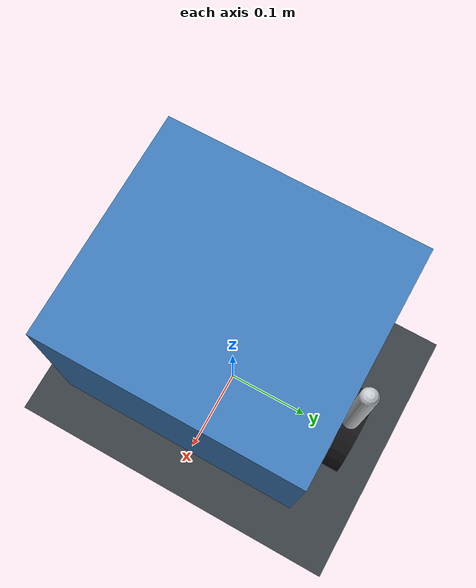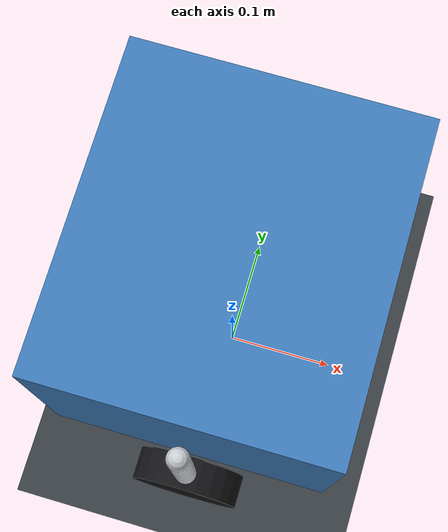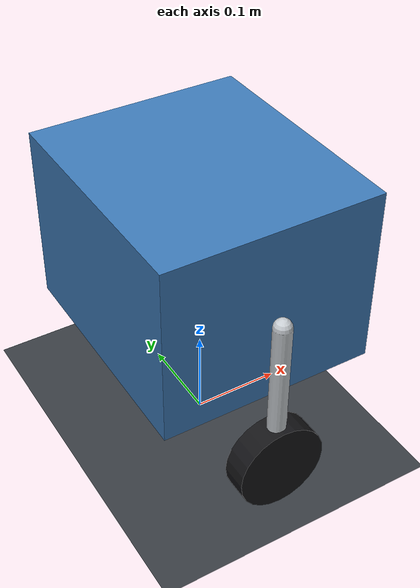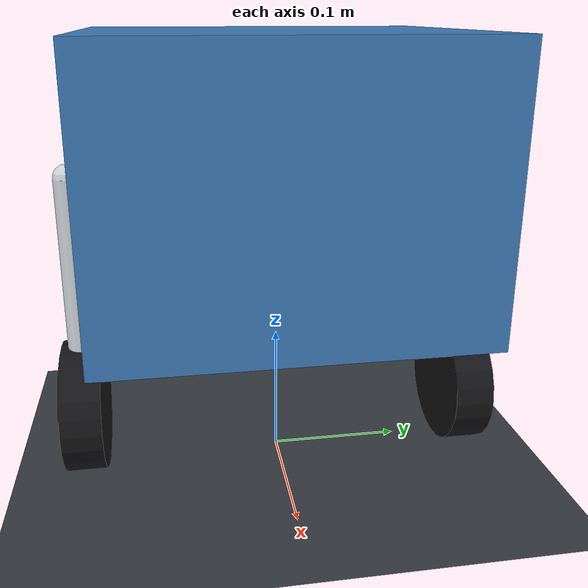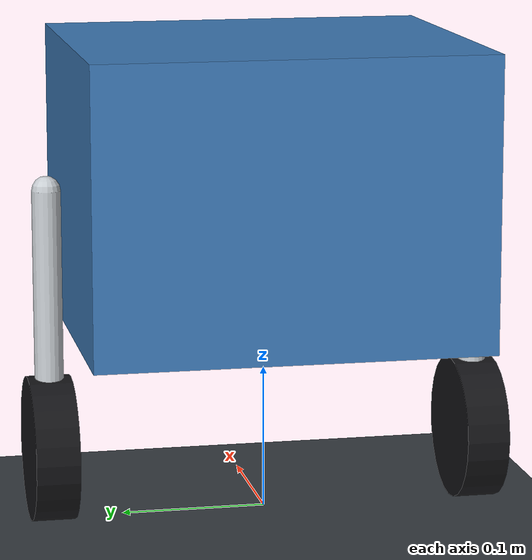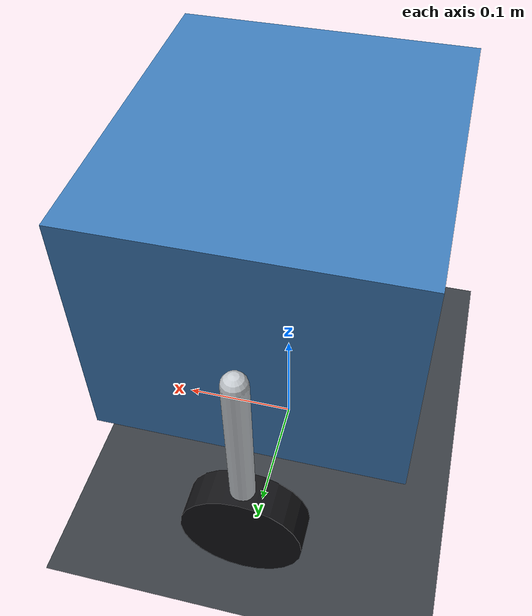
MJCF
<mujoco model="wbr_reduced">
  <compiler angle="radian" autolimits="true"/>

  <option timestep="0.001" gravity="0 0 -9.81" integrator="implicitfast">
    <flag contact="enable"/>
  </option>

  <default>
    <joint damping="0.02" armature="0.0001"/>
    <geom friction="1.0 0.005 0.0001" condim="3"/>
    <motor ctrllimited="true"/>
  </default>

  <asset>
    <texture name="ground_tex" type="2d" builtin="checker"
             rgb1="0.28 0.30 0.32" rgb2="0.16 0.18 0.20" width="512" height="512"/>
    <material name="ground_mat" texture="ground_tex" texrepeat="4 4" reflectance="0.1"/>
    <material name="platform_mat" rgba="0.24 0.48 0.72 1"/>
    <material name="leg_mat" rgba="0.78 0.80 0.82 1"/>
    <material name="wheel_mat" rgba="0.08 0.08 0.09 1"/>
  </asset>

  <worldbody>
    <light pos="0 -2 3" dir="0 1 -1" diffuse="0.8 0.8 0.8"/>
    <geom name="ground" type="plane" size="5 5 0.1" material="ground_mat"/>

    <body name="platform" pos="0 0 0.23">
      <!-- A planar root keeps the reduced plant aligned with the paper model. -->
      <joint name="root_x" type="slide" axis="1 0 0" damping="0"/>
      <joint name="root_z" type="slide" axis="0 0 1" damping="0"/>
      <joint name="root_pitch" type="hinge" axis="0 1 0" damping="0.05"/>
      <inertial pos="0 0 0" mass="6.3"
                diaginertia="0.11354 0.024008 0.1171525"/>
      <geom name="platform_geom" type="box" size="0.12 0.135 0.10"
            material="platform_mat" density="0"/>

      <body name="leg_1" pos="0 0.15 0">
        <joint name="leg_theta_1" type="hinge" axis="0 1 0"/>
        <inertial pos="0 0 -0.09" mass="0.47"
                  diaginertia="0.00130 0.00130 0.000024"/>
        <geom name="leg_geom_1" type="capsule" fromto="0 0 0 0 0 -0.18"
              size="0.01" material="leg_mat" density="0"/>
        <body name="wheel_1" pos="0 0 -0.18">
          <joint name="wheel_joint_1" type="hinge" axis="0 1 0" damping="0.001"/>
          <inertial pos="0 0 0" mass="0.47"
                    diaginertia="0.000329 0.0005875 0.000329"/>
          <geom name="wheel_geom_1" type="cylinder" fromto="0 -0.015 0 0 0.015 0"
                size="0.05" material="wheel_mat" density="0"/>
        </body>
      </body>

      <body name="leg_2" pos="0 -0.15 0">
        <joint name="leg_theta_2" type="hinge" axis="0 1 0"/>
        <inertial pos="0 0 -0.09" mass="0.47"
                  diaginertia="0.00130 0.00130 0.000024"/>
        <geom name="leg_geom_2" type="capsule" fromto="0 0 0 0 0 -0.18"
              size="0.01" material="leg_mat" density="0"/>
        <body name="wheel_2" pos="0 0 -0.18">
          <joint name="wheel_joint_2" type="hinge" axis="0 1 0" damping="0.001"/>
          <inertial pos="0 0 0" mass="0.47"
                    diaginertia="0.000329 0.0005875 0.000329"/>
          <geom name="wheel_geom_2" type="cylinder" fromto="0 -0.015 0 0 0.015 0"
                size="0.05" material="wheel_mat" density="0"/>
        </body>
      </body>
    </body>
  </worldbody>

  <actuator>
    <motor name="wheel_motor_1" joint="wheel_joint_1" ctrlrange="-5 5"/>
    <motor name="wheel_motor_2" joint="wheel_joint_2" ctrlrange="-5 5"/>
    <motor name="hip_motor_1" joint="leg_theta_1" ctrlrange="-20 20"/>
    <motor name="hip_motor_2" joint="leg_theta_2" ctrlrange="-20 20"/>
  </actuator>

  <keyframe>
    <key name="standing" qpos="0 0 0 0 0 0 0" ctrl="0 0 0 0"/>
  </keyframe>
</mujoco>
